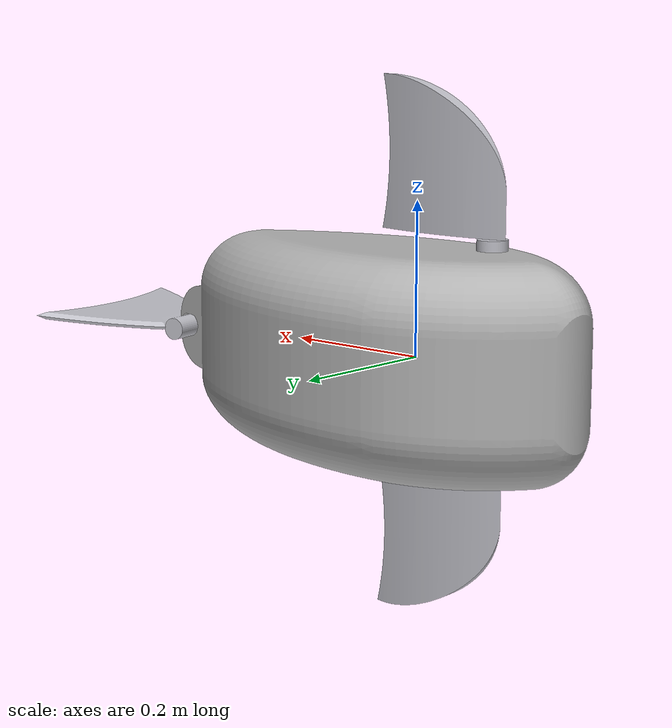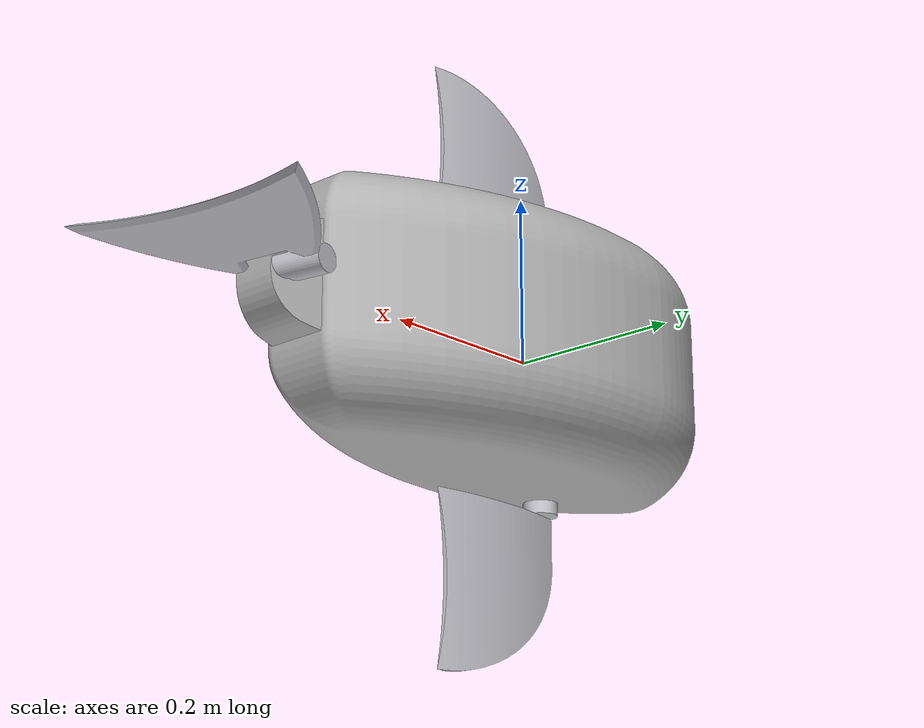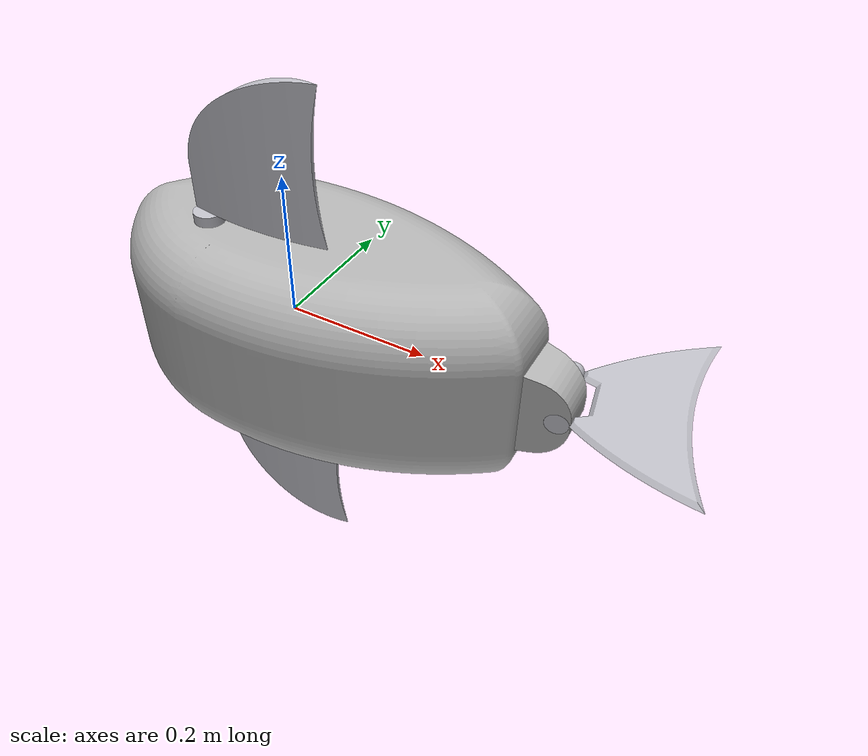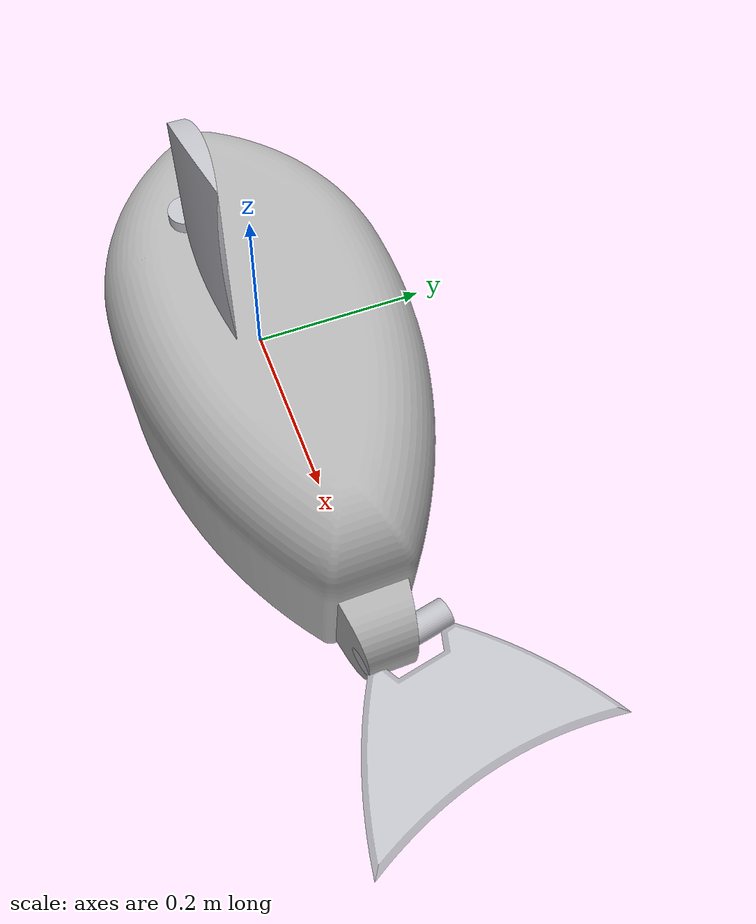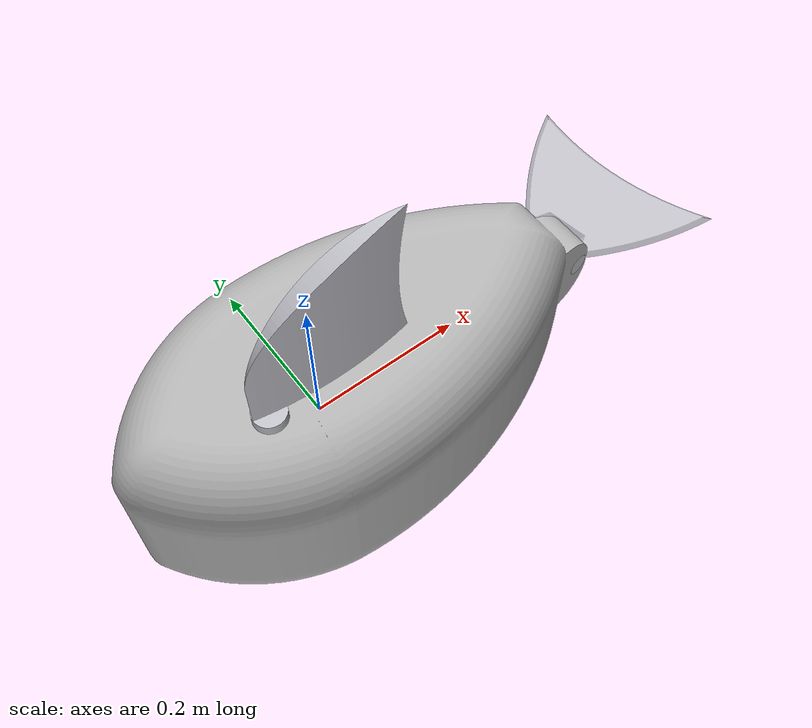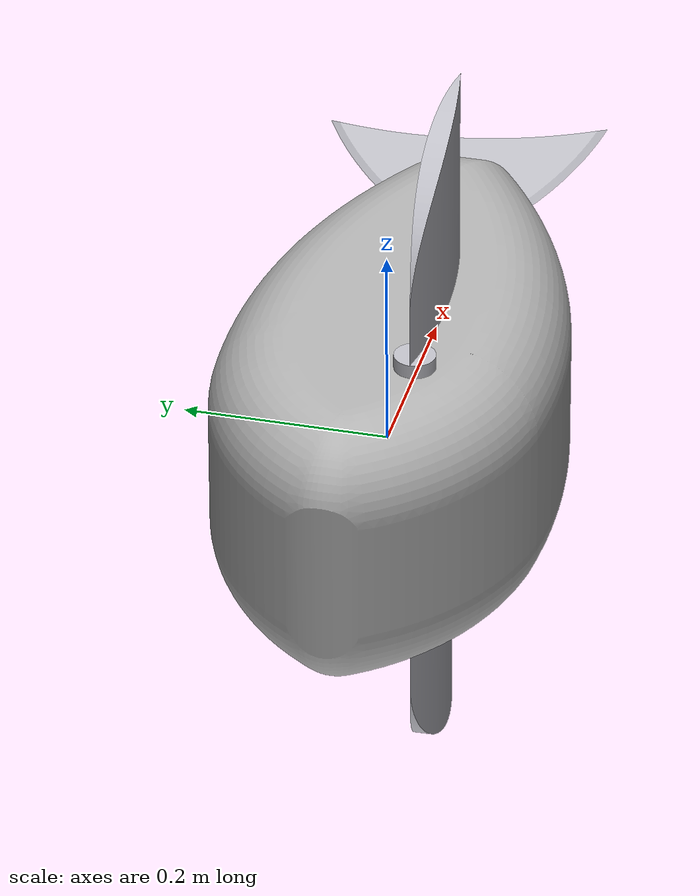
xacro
<?xml version="1.0"?>
<robot name="Fish_HPURV" xmlns:xacro="http://www.ros.org/wiki/xacro">

  <!-- ✅ Define Material Properties (Merged from materials.xacro) -->
  <material name="Fish_HPURV_silver">
    <color rgba="0.700 0.700 0.700 1.000"/>
  </material>

  <!-- ✅ Define Gazebo Plugin (Merged from Fish_HPURV.gazebo) -->
  <gazebo>
    <plugin name="control" filename="libgazebo_ros_control.so"/>
  </gazebo>

  <!-- ✅ Define Main Robot Body (Merged from Fish_HPURV_macro.urdf.xacro) -->
  <xacro:macro name="Fish_HPURV" params="prefix">
    <!-- Base Link -->
    <link name="${prefix}base_link">
      <inertial>
        <origin xyz="0 0 0" rpy="0 0 0"/>
        <mass value="5.0"/>
        <inertia ixx="0.01" iyy="0.01" izz="0.01" ixy="0" iyz="0" ixz="0"/>
      </inertial>
      <visual>
        <origin xyz="0 0 0" rpy="0 0 0"/>
        <geometry>
          <mesh filename="package://Fish_HPURV_description/meshes/base_link.stl" scale="0.001 0.001 0.001"/>
        </geometry>
        <material name="Fish_HPURV_silver"/>
      </visual>
      <collision>
        <origin xyz="0 0 0" rpy="0 0 0"/>
        <geometry>
          <mesh filename="package://Fish_HPURV_description/meshes/base_link.stl" scale="0.001 0.001 0.001"/>
        </geometry>
      </collision>
    </link>

    <!-- ✅ Define Fins -->
    <link name="${prefix}Pectal_left">
      <visual>
        <geometry>
          <mesh filename="package://Fish_HPURV_description/meshes/Pectal_left.stl" scale="0.001 0.001 0.001"/>
        </geometry>
      </visual>
    </link>

    <link name="${prefix}Pectal_right">
      <visual>
        <geometry>
          <mesh filename="package://Fish_HPURV_description/meshes/Pectal_right.stl" scale="0.001 0.001 0.001"/>
        </geometry>
      </visual>
    </link>

    <link name="${prefix}Caudal_Fin">
      <visual>
        <geometry>
          <mesh filename="package://Fish_HPURV_description/meshes/Caudal_Fin.stl" scale="0.001 0.001 0.001"/>
        </geometry>
      </visual>
    </link>

    <!-- ✅ Define Joints -->
    <joint name="${prefix}Revolute_2" type="revolute">
      <origin xyz="-0.082983 -0.047057 0.139" rpy="0 0 0"/>
      <parent link="${prefix}base_link"/>
      <child link="${prefix}Pectal_left"/>
      <axis xyz="1.0 0.0 0.0"/>
      <limit upper="0.785398" lower="-0.785398" effort="100" velocity="100"/>
    </joint>

    <joint name="${prefix}Revolute_7" type="revolute">
      <origin xyz="-0.082983 -0.047057 -0.14" rpy="0 0 0"/>
      <parent link="${prefix}base_link"/>
      <child link="${prefix}Pectal_right"/>
      <axis xyz="0.0 0.0 -1.0"/>
      <limit upper="0.785398" lower="-0.785398" effort="100" velocity="100"/>
    </joint>

    <joint name="${prefix}Revolute_8" type="revolute">
      <origin xyz="0.392742 -0.028093 0.0" rpy="0 0 0"/>
      <parent link="${prefix}base_link"/>
      <child link="${prefix}Caudal_Fin"/>
      <axis xyz="-0.173648 0.984808 0.0"/>
      <limit upper="0.785398" lower="-0.785398" effort="100" velocity="100"/>
    </joint>

    <!-- ✅ Add Gazebo Properties for Links -->
    <gazebo reference="${prefix}base_link">
      <material>Gazebo/Silver</material>
      <mu1>0.2</mu1>
      <mu2>0.2</mu2>
      <self_collide>true</self_collide>
      <gravity>true</gravity>
    </gazebo>

    <gazebo reference="${prefix}Pectal_left">
      <material>Gazebo/Silver</material>
      <mu1>0.2</mu1>
      <mu2>0.2</mu2>
      <self_collide>true</self_collide>
    </gazebo>

    <gazebo reference="${prefix}Pectal_right">
      <material>Gazebo/Silver</material>
      <mu1>0.2</mu1>
      <mu2>0.2</mu2>
      <self_collide>true</self_collide>
    </gazebo>

    <gazebo reference="${prefix}Caudal_Fin">
      <material>Gazebo/Silver</material>
      <mu1>0.2</mu1>
      <mu2>0.2</mu2>
      <self_collide>true</self_collide>
    </gazebo>

    <!-- ✅ Transmissions for ROS 2 Control (Merged from Fish_HPURV.trans) -->
    <transmission name="${prefix}Revolute_2_tran">
      <type>transmission_interface/SimpleTransmission</type>
      <joint name="${prefix}Revolute_2">
        <hardwareInterface>hardware_interface/EffortJointInterface</hardwareInterface>
      </joint>
      <actuator name="${prefix}Revolute_2_actr">
        <hardwareInterface>hardware_interface/EffortJointInterface</hardwareInterface>
        <mechanicalReduction>1</mechanicalReduction>
      </actuator>
    </transmission>

    <transmission name="${prefix}Revolute_7_tran">
      <type>transmission_interface/SimpleTransmission</type>
      <joint name="${prefix}Revolute_7">
        <hardwareInterface>hardware_interface/EffortJointInterface</hardwareInterface>
      </joint>
      <actuator name="${prefix}Revolute_7_actr">
        <hardwareInterface>hardware_interface/EffortJointInterface</hardwareInterface>
        <mechanicalReduction>1</mechanicalReduction>
      </actuator>
    </transmission>

    <transmission name="${prefix}Revolute_8_tran">
      <type>transmission_interface/SimpleTransmission</type>
      <joint name="${prefix}Revolute_8">
        <hardwareInterface>hardware_interface/EffortJointInterface</hardwareInterface>
      </joint>
      <actuator name="${prefix}Revolute_8_actr">
        <hardwareInterface>hardware_interface/EffortJointInterface</hardwareInterface>
        <mechanicalReduction>1</mechanicalReduction>
      </actuator>
    </transmission>

  </xacro:macro>

  <!-- Instantiate the Robot -->
  <xacro:Fish_HPURV prefix=""/>

</robot>
